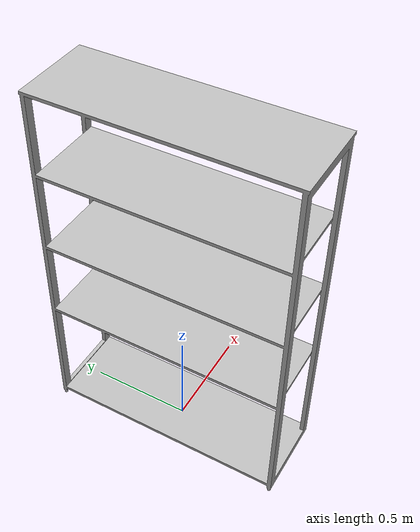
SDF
<sdf version='1.4'>
  <!-- Draw Model -->
  <model name='book_shelf'>
    <static>false</static>
    <link name="book_shelf">
      <collision name="collision">
        <geometry>
          <mesh>
            <uri>model://book_shelf/meshes/STL/book_shelf.stl</uri>
          </mesh>
        </geometry>
      </collision>

      <visual name="visual">
        <geometry>
          <mesh>
            <uri>model://book_shelf/meshes/DAE/book_shelf.dae</uri>
          </mesh>
        </geometry>
      </visual>
    </link>
  </model>
</sdf>
